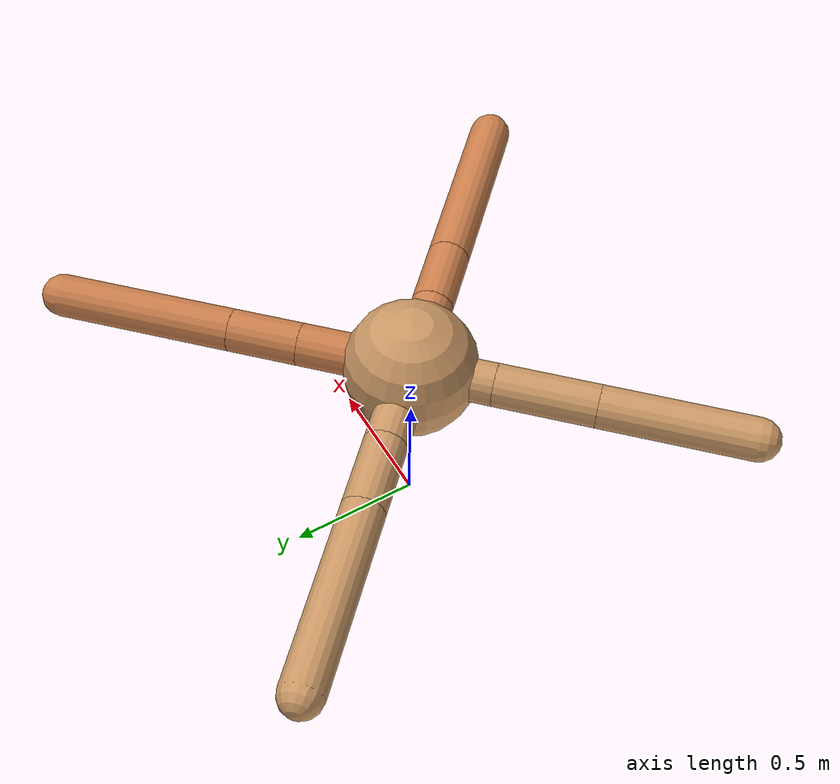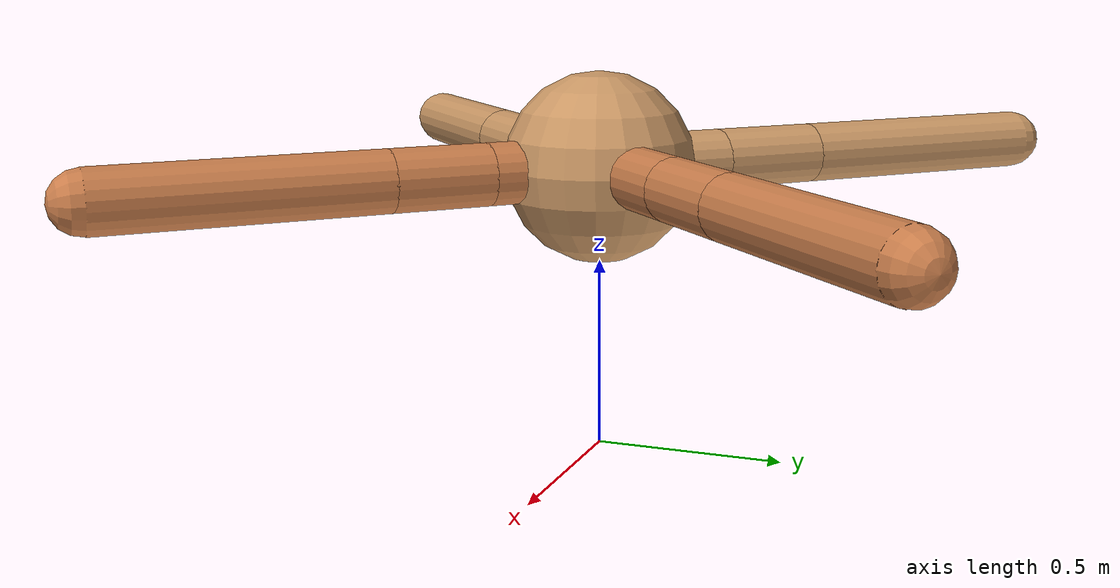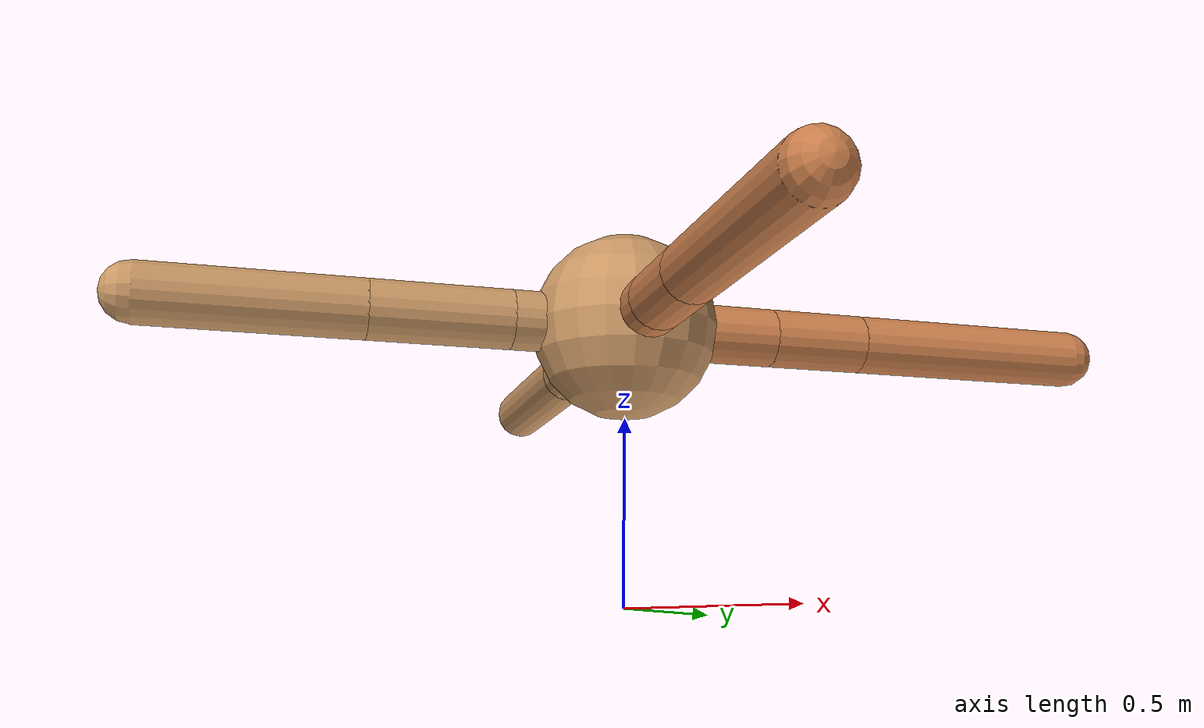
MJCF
<mujoco model="ant">
  <compiler angle="degree" coordinate="local" inertiafromgeom="true" />
  <option integrator="RK4" timestep="0.01" />
  <custom>
    <numeric data="0.0 0.0 0.55 1.0 0.0 0.0 0.0 0.0 1.0 0.0 -1.0 0.0 -1.0 0.0 1.0" name="init_qpos" />
  </custom>
  <default>
    <joint armature="1" damping="1" limited="true" />
    <geom conaffinity="0" condim="3" density="5.0" friction="1.5 0.1 0.1" margin="0.01" rgba="0.8 0.6 0.4 1" />
  </default>
  <worldbody>
    <body name="torso" pos="0 0 0.75">
      <geom name="torso_geom" pos="0 0 0" size="0.25" type="sphere" />

      <body name="front_left_leg" pos="0 0 0">
        <geom fromto="0.0 0.0 0.0 0.29570271780865065 0.29570271780865065 0.0" name="aux_1_geom" size="0.08" type="capsule" rgba=".8 .5 .3 1" />
        <body name="aux_1" pos="0.29570271780865065 0.29570271780865065 0.0">
          <joint axis="0 0 1" name="hip_1" pos="0.0 0.0 0.0" range="-40 40" type="hinge" />
          <geom fromto="0.0 0.0 0.0 0.18735309644580467 0.18735309644580467 0.0" name="left_leg_geom" size="0.08" type="capsule" rgba=".8 .5 .3 1" />
          <body pos="0.18735309644580467 0.18735309644580467 0.0" name="front_left_foot">
            <joint axis="-1 1 0" name="ankle_1" pos="0.0 0.0 0.0" range="30 100" type="hinge" />
            <geom fromto="0.0 0.0 0.0 0.47118176170700576 0.47118176170700576 0.0" name="left_ankle_geom" size="0.08" type="capsule" rgba=".8 .5 .3 1" />
          </body>
        </body>
      </body>
      <body name="front_right_leg" pos="0 0 0">
        <geom fromto="0.0 0.0 0.0 -0.25086396353451 0.25086396353451 0.0" name="aux_2_geom" size="0.08" type="capsule" />
        <body name="aux_2" pos="-0.25086396353451 0.25086396353451 0.0">
          <joint axis="0 0 1" name="hip_2" pos="0.0 0.0 0.0" range="-40 40" type="hinge" />
          <geom fromto="0.0 0.0 0.0 -0.19999111599713856 0.19999111599713856 0.0" name="right_leg_geom" size="0.08" type="capsule" />
          <body pos="-0.19999111599713856 0.19999111599713856 0.0" name="front_right_foot">
            <joint axis="1 1 0" name="ankle_2" pos="0.0 0.0 0.0" range="-100 -30" type="hinge" />
            <geom fromto="0.0 0.0 0.0 -0.49917119678745525 0.49917119678745525 0.0" name="right_ankle_geom" size="0.08" type="capsule" />
          </body>
        </body>
      </body>
      <body name="left_back_leg" pos="0 0 0">
        <geom fromto="0.0 0.0 0.0 -0.21976400004804467 -0.21976400004804467 0.0" name="aux_3_geom" size="0.08" type="capsule" />
        <body name="aux_3" pos="-0.21976400004804467 -0.21976400004804467 0.0">
          <joint axis="0 0 1" name="hip_3" pos="0.0 0.0 0.0" range="-40 40" type="hinge" />
          <geom fromto="0.0 0.0 0.0 -0.26559647046541485 -0.26559647046541485 0.0" name="back_leg_geom" size="0.08" type="capsule" />
          <body pos="-0.26559647046541485 -0.26559647046541485 0.0" name="left_back_foot">
            <joint axis="-1 1 0" name="ankle_3" pos="0.0 0.0 0.0" range="-100 -30" type="hinge" />
            <geom fromto="0.0 0.0 0.0 -0.40052210565666946 -0.40052210565666946 0.0" name="third_ankle_geom" size="0.08" type="capsule" />
          </body>
        </body>
      </body>
      <body name="right_back_leg" pos="0 0 0">
        <geom fromto="0.0 0.0 0.0 0.21842710173700156 -0.21842710173700156 0.0" name="aux_4_geom" size="0.08" type="capsule" rgba=".8 .5 .3 1" />
        <body name="aux_4" pos="0.21842710173700156 -0.21842710173700156 0.0">
          <joint axis="0 0 1" name="hip_4" pos="0.0 0.0 0.0" range="-40 40" type="hinge" />
          <geom fromto="0.0 0.0 0.0 0.18111129058361003 -0.18111129058361003 0.0" name="rightback_leg_geom" size="0.08" type="capsule" rgba=".8 .5 .3 1" />
          <body pos="0.18111129058361003 -0.18111129058361003 0.0" name="right_back_foot">
            <joint axis="1 1 0" name="ankle_4" pos="0.0 0.0 0.0" range="30 100" type="hinge" />
            <geom fromto="0.0 0.0 0.0 0.5050907754626295 -0.5050907754626295 0.0" name="fourth_ankle_geom" size="0.08" type="capsule" rgba=".8 .5 .3 1" />
          </body>
        </body>
      </body>
    </body>
  </worldbody>
  <actuator>
    <motor ctrllimited="true" ctrlrange="-1.0 1.0" joint="hip_4" gear="150" />
    <motor ctrllimited="true" ctrlrange="-1.0 1.0" joint="ankle_4" gear="150" />
    <motor ctrllimited="true" ctrlrange="-1.0 1.0" joint="hip_1" gear="150" />
    <motor ctrllimited="true" ctrlrange="-1.0 1.0" joint="ankle_1" gear="150" />
    <motor ctrllimited="true" ctrlrange="-1.0 1.0" joint="hip_2" gear="150" />
    <motor ctrllimited="true" ctrlrange="-1.0 1.0" joint="ankle_2" gear="150" />
    <motor ctrllimited="true" ctrlrange="-1.0 1.0" joint="hip_3" gear="150" />
    <motor ctrllimited="true" ctrlrange="-1.0 1.0" joint="ankle_3" gear="150" />
  </actuator>
</mujoco>
